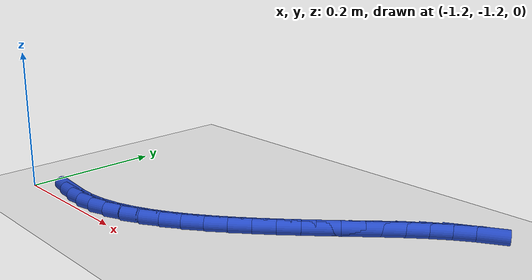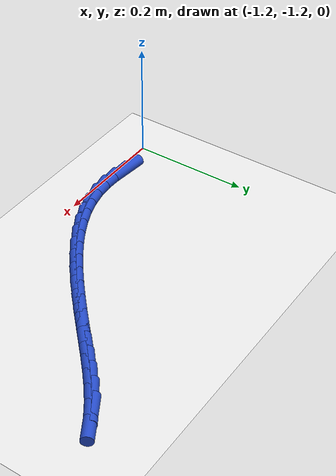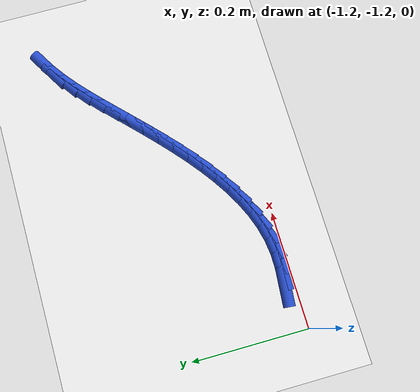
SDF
<sdf version="1.6">
 <world name="default">
  <model name="ground_plane">
   <static>1</static>
   <link name="link">
    <collision name="collision">
     <geometry><plane><normal>0 0 1</normal><size>100 100</size></plane></geometry>
     <surface><friction><ode><mu>100</mu><mu2>50</mu2></ode></friction></surface>
    </collision>
    <visual name="visual">
     <cast_shadows>0</cast_shadows>
     <geometry><plane><normal>0 0 1</normal><size>100 100</size></plane></geometry>
     <material>
      <script><uri>file://media/materials/scripts/gazebo.material</uri><name>Gazebo/WhiteGlow</name></script>
     </material>
    </visual>
   </link>
  </model>
  <model name="line">
   <link name="link_188">
    <pose>-1.1178418116899975 -1.1821166796736964 0.01 0 1.57 -0.09788185432647188</pose>
    <collision name="collision">
     <geometry><cylinder><radius>0.01</radius><length>0.08</length></cylinder></geometry>
    </collision>
    <visual name="visual">
     <material>
      <script><name>Gazebo/Blue</name><uri>file://media/materials/scripts/gazebo.material</uri></script>
     </material>
     <geometry><cylinder><radius>0.01</radius><length>0.08</length></cylinder></geometry>
    </visual>
   </link>
   <link name="link_189">
    <pose>-1.0915669171919624 -1.1846967601314773 0.01 0 1.57 -0.0016007093496074123</pose>
    <collision name="collision">
     <geometry><cylinder><radius>0.01</radius><length>0.08</length></cylinder></geometry>
    </collision>
    <visual name="visual">
     <material>
      <script><name>Gazebo/Blue</name><uri>file://media/materials/scripts/gazebo.material</uri></script>
     </material>
     <geometry><cylinder><radius>0.01</radius><length>0.08</length></cylinder></geometry>
    </visual>
   </link>
   <link name="link_190">
    <pose>-1.0656082183013957 -1.1847383124989845 0.01 0 1.57 0.11107684453285407</pose>
    <collision name="collision">
     <geometry><cylinder><radius>0.01</radius><length>0.08</length></cylinder></geometry>
    </collision>
    <visual name="visual">
     <material>
      <script><name>Gazebo/Blue</name><uri>file://media/materials/scripts/gazebo.material</uri></script>
     </material>
     <geometry><cylinder><radius>0.01</radius><length>0.08</length></cylinder></geometry>
    </visual>
   </link>
   <link name="link_191">
    <pose>-1.0399636763505538 -1.1818780245390146 0.01 0 1.57 0.22856355640386775</pose>
    <collision name="collision">
     <geometry><cylinder><radius>0.01</radius><length>0.08</length></cylinder></geometry>
    </collision>
    <visual name="visual">
     <material>
      <script><name>Gazebo/Blue</name><uri>file://media/materials/scripts/gazebo.material</uri></script>
     </material>
     <geometry><cylinder><radius>0.01</radius><length>0.08</length></cylinder></geometry>
    </visual>
   </link>
   <link name="link_192">
    <pose>-1.014632774209574 -1.1759853302907401 0.01 0 1.57 0.33387163548861554</pose>
    <collision name="collision">
     <geometry><cylinder><radius>0.01</radius><length>0.08</length></cylinder></geometry>
    </collision>
    <visual name="visual">
     <material>
      <script><name>Gazebo/Blue</name><uri>file://media/materials/scripts/gazebo.material</uri></script>
     </material>
     <geometry><cylinder><radius>0.01</radius><length>0.08</length></cylinder></geometry>
    </visual>
   </link>
   <link name="link_193">
    <pose>-0.9896174720433892 -1.1673086100856114 0.01 0 1.57 0.42499551871224933</pose>
    <collision name="collision">
     <geometry><cylinder><radius>0.01</radius><length>0.08</length></cylinder></geometry>
    </collision>
    <visual name="visual">
     <material>
      <script><name>Gazebo/Blue</name><uri>file://media/materials/scripts/gazebo.material</uri></script>
     </material>
     <geometry><cylinder><radius>0.01</radius><length>0.08</length></cylinder></geometry>
    </visual>
   </link>
   <link name="link_194">
    <pose>-0.9649199576482294 -1.1561310645100065 0.01 0 1.57 0.5024502028581667</pose>
    <collision name="collision">
     <geometry><cylinder><radius>0.01</radius><length>0.08</length></cylinder></geometry>
    </collision>
    <visual name="visual">
     <material>
      <script><name>Gazebo/Blue</name><uri>file://media/materials/scripts/gazebo.material</uri></script>
     </material>
     <geometry><cylinder><radius>0.01</radius><length>0.08</length></cylinder></geometry>
    </visual>
   </link>
   <link name="link_195">
    <pose>-0.9405424188203244 -1.1427358941503052 0.01 0 1.57 0.5673689094470038</pose>
    <collision name="collision">
     <geometry><cylinder><radius>0.01</radius><length>0.08</length></cylinder></geometry>
    </collision>
    <visual name="visual">
     <material>
      <script><name>Gazebo/Blue</name><uri>file://media/materials/scripts/gazebo.material</uri></script>
     </material>
     <geometry><cylinder><radius>0.01</radius><length>0.08</length></cylinder></geometry>
    </visual>
   </link>
   <link name="link_196">
    <pose>-0.9164870433559043 -1.1274062995928862 0.01 0 1.57 0.6210884810844747</pose>
    <collision name="collision">
     <geometry><cylinder><radius>0.01</radius><length>0.08</length></cylinder></geometry>
    </collision>
    <visual name="visual">
     <material>
      <script><name>Gazebo/Blue</name><uri>file://media/materials/scripts/gazebo.material</uri></script>
     </material>
     <geometry><cylinder><radius>0.01</radius><length>0.08</length></cylinder></geometry>
    </visual>
   </link>
   <link name="link_197">
    <pose>-0.8927560190511993 -1.1104254814241274 0.01 0 1.57 0.6649011318872459</pose>
    <collision name="collision">
     <geometry><cylinder><radius>0.01</radius><length>0.08</length></cylinder></geometry>
    </collision>
    <visual name="visual">
     <material>
      <script><name>Gazebo/Blue</name><uri>file://media/materials/scripts/gazebo.material</uri></script>
     </material>
     <geometry><cylinder><radius>0.01</radius><length>0.08</length></cylinder></geometry>
    </visual>
   </link>
   <link name="link_198">
    <pose>-0.8693515337024394 -1.092076640230409 0.01 0 1.57 0.6999295287447003</pose>
    <collision name="collision">
     <geometry><cylinder><radius>0.01</radius><length>0.08</length></cylinder></geometry>
    </collision>
    <visual name="visual">
     <material>
      <script><name>Gazebo/Blue</name><uri>file://media/materials/scripts/gazebo.material</uri></script>
     </material>
     <geometry><cylinder><radius>0.01</radius><length>0.08</length></cylinder></geometry>
    </visual>
   </link>
   <link name="link_199">
    <pose>-0.8462757751058544 -1.0726429765981087 0.01 0 1.57 0.727075573312</pose>
    <collision name="collision">
     <geometry><cylinder><radius>0.01</radius><length>0.08</length></cylinder></geometry>
    </collision>
    <visual name="visual">
     <material>
      <script><name>Gazebo/Blue</name><uri>file://media/materials/scripts/gazebo.material</uri></script>
     </material>
     <geometry><cylinder><radius>0.01</radius><length>0.08</length></cylinder></geometry>
    </visual>
   </link>
   <link name="link_200">
    <pose>-0.8235309310576746 -1.0524076911136062 0.01 0 1.57 0.7470058773777294</pose>
    <collision name="collision">
     <geometry><cylinder><radius>0.01</radius><length>0.08</length></cylinder></geometry>
    </collision>
    <visual name="visual">
     <material>
      <script><name>Gazebo/Blue</name><uri>file://media/materials/scripts/gazebo.material</uri></script>
     </material>
     <geometry><cylinder><radius>0.01</radius><length>0.08</length></cylinder></geometry>
    </visual>
   </link>
   <link name="link_201">
    <pose>-0.8011191893541303 -1.0316539843632806 0.01 0 1.57 0.7601506659226329</pose>
    <collision name="collision">
     <geometry><cylinder><radius>0.01</radius><length>0.08</length></cylinder></geometry>
    </collision>
    <visual name="visual">
     <material>
      <script><name>Gazebo/Blue</name><uri>file://media/materials/scripts/gazebo.material</uri></script>
     </material>
     <geometry><cylinder><radius>0.01</radius><length>0.08</length></cylinder></geometry>
    </visual>
   </link>
   <link name="link_202">
    <pose>-0.779042737791451 -1.0106650569335098 0.01 0 1.57 0.7667024137145023</pose>
    <collision name="collision">
     <geometry><cylinder><radius>0.01</radius><length>0.08</length></cylinder></geometry>
    </collision>
    <visual name="visual">
     <material>
      <script><name>Gazebo/Blue</name><uri>file://media/materials/scripts/gazebo.material</uri></script>
     </material>
     <geometry><cylinder><radius>0.01</radius><length>0.08</length></cylinder></geometry>
    </visual>
   </link>
   <link name="link_203">
    <pose>-0.7573037641658669 -0.9897241094106733 0.01 0 1.57 0.765723303043099</pose>
    <collision name="collision">
     <geometry><cylinder><radius>0.01</radius><length>0.08</length></cylinder></geometry>
    </collision>
    <visual name="visual">
     <material>
      <script><name>Gazebo/Blue</name><uri>file://media/materials/scripts/gazebo.material</uri></script>
     </material>
     <geometry><cylinder><radius>0.01</radius><length>0.08</length></cylinder></geometry>
    </visual>
   </link>
   <link name="link_204">
    <pose>-0.7358721085697024 -0.9691196159120563 0.01 0 1.57 0.7516993930113469</pose>
    <collision name="collision">
     <geometry><cylinder><radius>0.01</radius><length>0.08</length></cylinder></geometry>
    </collision>
    <visual name="visual">
     <material>
      <script><name>Gazebo/Blue</name><uri>file://media/materials/scripts/gazebo.material</uri></script>
     </material>
     <geometry><cylinder><radius>0.01</radius><length>0.08</length></cylinder></geometry>
    </visual>
   </link>
   <link name="link_205">
    <pose>-0.714531007145111 -0.9491704719320331 0.01 0 1.57 0.7220217250197616</pose>
    <collision name="collision">
     <geometry><cylinder><radius>0.01</radius><length>0.08</length></cylinder></geometry>
    </collision>
    <visual name="visual">
     <material>
      <script><name>Gazebo/Blue</name><uri>file://media/materials/scripts/gazebo.material</uri></script>
     </material>
     <geometry><cylinder><radius>0.01</radius><length>0.08</length></cylinder></geometry>
    </visual>
   </link>
   <link name="link_206">
    <pose>-0.69299692651525 -0.9302064581617474 0.01 0 1.57 0.6758631956181897</pose>
    <collision name="collision">
     <geometry><cylinder><radius>0.01</radius><length>0.08</length></cylinder></geometry>
    </collision>
    <visual name="visual">
     <material>
      <script><name>Gazebo/Blue</name><uri>file://media/materials/scripts/gazebo.material</uri></script>
     </material>
     <geometry><cylinder><radius>0.01</radius><length>0.08</length></cylinder></geometry>
    </visual>
   </link>
   <link name="link_207">
    <pose>-0.6709862488560026 -0.9125573690594799 0.01 0 1.57 0.6126316932141063</pose>
    <collision name="collision">
     <geometry><cylinder><radius>0.01</radius><length>0.08</length></cylinder></geometry>
    </collision>
    <visual name="visual">
     <material>
      <script><name>Gazebo/Blue</name><uri>file://media/materials/scripts/gazebo.material</uri></script>
     </material>
     <geometry><cylinder><radius>0.01</radius><length>0.08</length></cylinder></geometry>
    </visual>
   </link>
   <link name="link_208">
    <pose>-0.6482153563432522 -0.8965529990835126 0.01 0 1.57 0.5323849999004939</pose>
    <collision name="collision">
     <geometry><cylinder><radius>0.01</radius><length>0.08</length></cylinder></geometry>
    </collision>
    <visual name="visual">
     <material>
      <script><name>Gazebo/Blue</name><uri>file://media/materials/scripts/gazebo.material</uri></script>
     </material>
     <geometry><cylinder><radius>0.01</radius><length>0.08</length></cylinder></geometry>
    </visual>
   </link>
  </model>
 </world>
</sdf>
